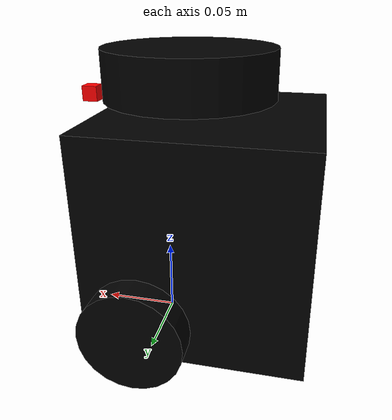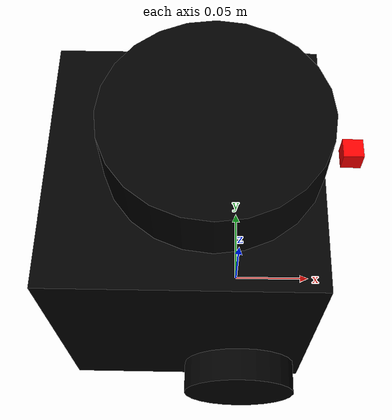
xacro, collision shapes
<?xml version="1.0" ?>
<robot name="turtlebot3_burger" xmlns:xacro="http://ros.org/wiki/xacro">
  <xacro:include filename="$(find turtlebot3_description)/urdf/common_properties.xacro"/>
  <xacro:include filename="$(find turtlebot3_description)/urdf/turtlebot3_burger.gazebo.xacro"/>

  <gazebo reference="camera_link">
    <sensor type="depth" name="camera_depth_sensor">
      <update_rate>30.0</update_rate>
      <camera>
        <horizontal_fov>1.047198</horizontal_fov> <image>
          <width>640</width>
          <height>480</height>
          <format>B8G8R8</format>
        </image>
        <clip>
          <near>0.05</near>
          <far>3.0</far>
        </clip>
      </camera>

      <plugin name="camera_controller" filename="libgazebo_ros_openni_kinect.so">
         <ros>
          <remapping>image_raw:=rgb/image_raw</remapping>
          <remapping>camera_info:=rgb/camera_info</remapping>
          <remapping>depth_image:=depth/image_raw</remapping>
        </ros>
        <camera_name>camera</camera_name>
        <frame_name>camera_depth_optical_frame</frame_name>

        <!-- CORRECT PARAMETERS FOR OPENNI PLUGIN -->
        <pointCloudCutoff>0.05</pointCloudCutoff>       <!-- Replaces min_depth -->
        <pointCloudCutoffMax>3.0</pointCloudCutoffMax>  <!-- Replaces max_depth -->
        <hackBaseline>0.07</hackBaseline>               <!-- Valid, but usually 0.0 for mono depth -->

        <!-- Distortion parameters (keep as 0 unless you have a specific model) -->
        <distortionK1>0.0</distortionK1>
        <distortionK2>0.0</distortionK2>
        <distortionK3>0.0</distortionK3>
        <distortionT1>0.0</distortionT1>
        <distortionT2>0.0</distortionT2>
      </plugin>
    </sensor>
  </gazebo>

  <link name="camera_link">
    <visual>
      <origin xyz="0 0 0" rpy="0 0 0"/>
      <geometry>
        <box size="0.01 0.01 0.01"/> </geometry>
      <material name="red"/>
    </visual>
    <collision>
      <origin xyz="0 0 0" rpy="0 0 0"/>
      <geometry>
        <box size="0.01 0.01 0.01"/>
      </geometry>
    </collision>
    <inertial>
      <mass value="0.1" />
      <origin xyz="0 0 0" />
      <inertia ixx="0.01" ixy="0.0" ixz="0.0" iyy="0.01" iyz="0.0" izz="0.01" />
    </inertial>
  </link>

  <joint name="camera_joint" type="fixed">
    <parent link="base_link"/>
    <child link="camera_link"/>
    <origin xyz="0.05 0 0.15" rpy="0 0 0"/>
  </joint>

  <joint name="camera_optical_joint" type="fixed">
    <parent link="camera_link"/>
    <child link="camera_depth_optical_frame"/>
    <origin xyz="0 0 0" rpy="-1.57079632679 0.0 -1.57079632679"/>
  </joint>

  <link name="camera_depth_optical_frame"/>

  <link name="base_footprint"/>

  <joint name="base_joint" type="fixed">
    <parent link="base_footprint"/>
    <child link="base_link"/>
    <origin xyz="0.0 0.0 0.010" rpy="0 0 0"/>
  </joint>

  <link name="base_link">
    <visual>
      <origin xyz="-0.032 0 0.0" rpy="0 0 0"/>
      <geometry>
        <mesh filename="package://turtlebot3_description/meshes/bases/burger_base.stl" scale="0.001 0.001 0.001"/>
      </geometry>
      <material name="light_black"/>
    </visual>

    <collision>
      <origin xyz="-0.032 0 0.070" rpy="0 0 0"/>
      <geometry>
        <box size="0.140 0.140 0.143"/>
      </geometry>
    </collision>

    <inertial>
      <origin xyz="0 0 0" rpy="0 0 0"/>
      <mass value="8.2573504e-01"/>
      <inertia ixx="2.2124416e-03" ixy="-1.2294101e-05" ixz="3.4938785e-05"
               iyy="2.1193702e-03" iyz="-5.0120904e-06"
               izz="2.0064271e-03" />
    </inertial>
  </link>

  <joint name="wheel_left_joint" type="continuous">
    <parent link="base_link"/>
    <child link="wheel_left_link"/>
    <origin xyz="0.0 0.08 0.023" rpy="-1.57 0 0"/>
    <axis xyz="0 0 1"/>
  </joint>

  <link name="wheel_left_link">
    <visual>
      <origin xyz="0 0 0" rpy="1.57 0 0"/>
      <geometry>
        <mesh filename="package://turtlebot3_description/meshes/wheels/left_tire.stl" scale="0.001 0.001 0.001"/>
      </geometry>
      <material name="dark"/>
    </visual>

    <collision>
      <origin xyz="0 0 0" rpy="0 0 0"/>
      <geometry>
        <cylinder length="0.018" radius="0.033"/>
      </geometry>
    </collision>

    <inertial>
      <origin xyz="0 0 0" />
      <mass value="2.8498940e-02" />
      <inertia ixx="1.1175580e-05" ixy="-4.2369783e-11" ixz="-5.9381719e-09"
               iyy="1.1192413e-05" iyz="-1.4400107e-11"
               izz="2.0712558e-05" />
      </inertial>
  </link>

  <joint name="wheel_right_joint" type="continuous">
    <parent link="base_link"/>
    <child link="wheel_right_link"/>
    <origin xyz="0.0 -0.080 0.023" rpy="-1.57 0 0"/>
    <axis xyz="0 0 1"/>
  </joint>

  <link name="wheel_right_link">
    <visual>
      <origin xyz="0 0 0" rpy="1.57 0 0"/>
      <geometry>
        <mesh filename="package://turtlebot3_description/meshes/wheels/right_tire.stl" scale="0.001 0.001 0.001"/>
      </geometry>
      <material name="dark"/>
    </visual>

    <collision>
      <origin xyz="0 0 0" rpy="0 0 0"/>
      <geometry>
        <cylinder length="0.018" radius="0.033"/>
      </geometry>
    </collision>

    <inertial>
      <origin xyz="0 0 0" />
      <mass value="2.8498940e-02" />
      <inertia ixx="1.1175580e-05" ixy="-4.2369783e-11" ixz="-5.9381719e-09"
               iyy="1.1192413e-05" iyz="-1.4400107e-11"
               izz="2.0712558e-05" />
      </inertial>
  </link>

  <joint name="caster_back_joint" type="fixed">
    <parent link="base_link"/>
    <child link="caster_back_link"/>
    <origin xyz="-0.081 0 -0.004" rpy="-1.57 0 0"/>
  </joint>

  <link name="caster_back_link">
    <collision>
      <origin xyz="0 0.001 0" rpy="0 0 0"/>
      <geometry>
        <box size="0.030 0.009 0.020"/>
      </geometry>
    </collision>

    <inertial>
      <origin xyz="0 0 0" />
      <mass value="0.005" />
      <inertia ixx="0.001" ixy="0.0" ixz="0.0"
               iyy="0.001" iyz="0.0"
               izz="0.001" />
    </inertial>
  </link>

  <joint name="imu_joint" type="fixed">
    <parent link="base_link"/>
    <child link="imu_link"/>
    <origin xyz="-0.032 0 0.068" rpy="0 0 0"/>
  </joint>

  <link name="imu_link"/>

  <joint name="scan_joint" type="fixed">
    <parent link="base_link"/>
    <child link="base_scan"/>
    <origin xyz="-0.032 0 0.172" rpy="0 0 0"/>
  </joint>

  <link name="base_scan">
    <visual>
      <origin xyz="0 0 0.0" rpy="0 0 0"/>
      <geometry>
        <mesh filename="package://turtlebot3_description/meshes/sensors/lds.stl" scale="0.001 0.001 0.001"/>
      </geometry>
      <material name="dark"/>
    </visual>

    <collision>
      <origin xyz="0.015 0 -0.0065" rpy="0 0 0"/>
      <geometry>
        <cylinder length="0.0315" radius="0.055"/>
      </geometry>
    </collision>

    <inertial>
      <mass value="0.114" />
      <origin xyz="0 0 0" />
      <inertia ixx="0.001" ixy="0.0" ixz="0.0"
               iyy="0.001" iyz="0.0"
               izz="0.001" />
    </inertial>
  </link>

</robot>

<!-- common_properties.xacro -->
<robot name="turtlebot3_common_properties" xmlns:xacro="http://ros.org/wiki/xacro">
  <material name="light_black">
    <color rgba="0.0 0.0 0.0 0.0"/>
  </material>
  <material name="dark">
    <color rgba="0.0 0.0 0.0 1.0"/>
  </material>
  <material name="red">
    <color rgba="1 0 0 1"/>
  </material>
</robot>
